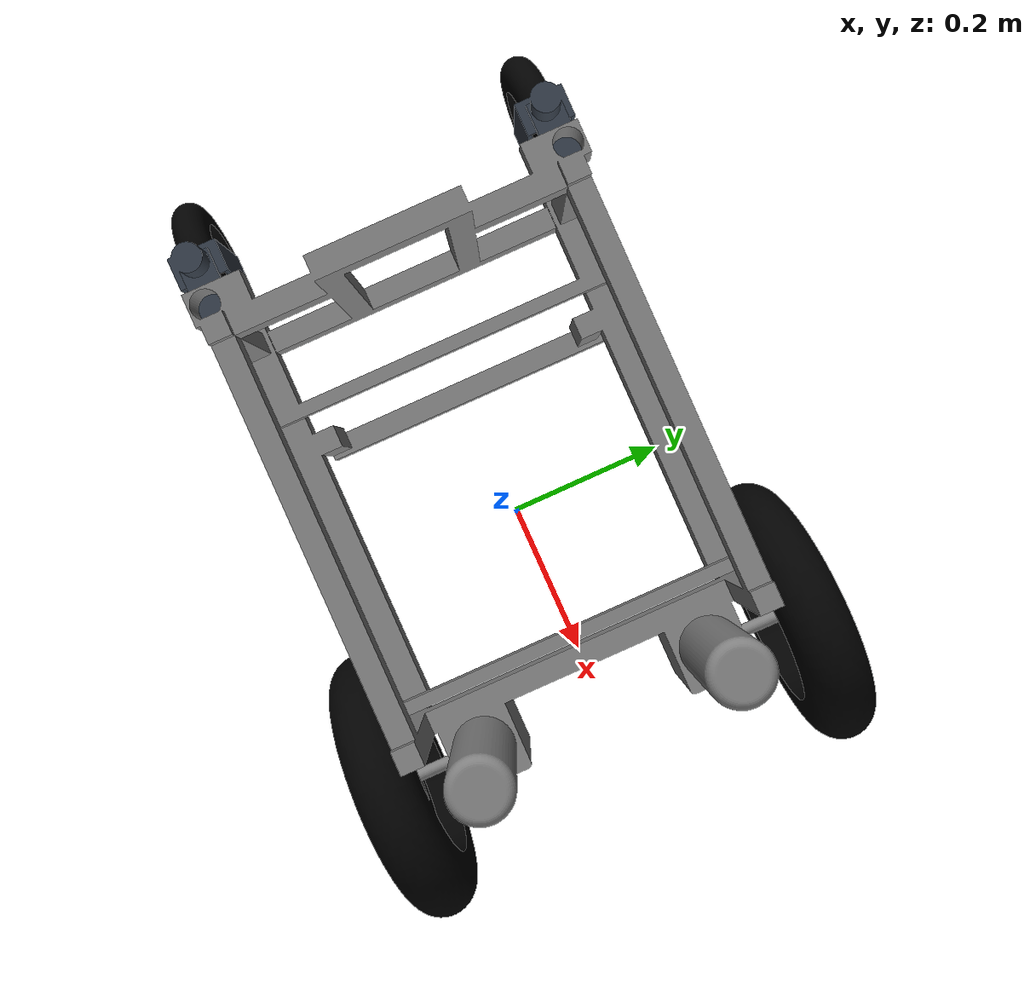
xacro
<?xml version="1.0" encoding="utf-8"?>

<robot name="robot_platform_urdf" xmlns:xacro="http://www.ros.org/wiki/xacro">

  <xacro:include filename="$(find fyp_sim)/urdf/robot.gazebo.xacro"/>

  <!-- dummy link -->
  <link name="base_footprint"/>

  <!-- chassis -->
  <link name="chassis">
    <inertial>
      <origin
        xyz="0 0 0"
        rpy="0 0 0" />
      <mass
        value="28" />
      <inertia
        ixx="0.0385919077427861"
        ixy="-1.42698858839734E-16"
        ixz="-8.43576589332318E-05"
        iyy="0.0585218852507233"
        iyz="8.03899668248163E-17"
        izz="0.0423119666555374" />
    </inertial>
    <visual>
      <origin
        xyz="0 0 0"
        rpy="0 0 0" />
      <geometry>
        <mesh
          filename="package://fyp_sim/meshes/chassis.stl" scale="0.01 0.01 0.01" />
      </geometry>
      <material
        name="chassis_material">
        <color
          rgba="0.5 0.5 0.5 1.0" />
      </material>
    </visual>
    <collision name="chassis_collision">>
      <origin
        xyz="0 0 0"
        rpy="0 0 ${-pi/2}" />
      <geometry>
        <mesh
          filename="package://fyp_sim/meshes/chassis.stl" scale="0.01 0.01 0.01" />
      </geometry>
    </collision>
  </link>

  <!-- back wheel left -->
  <link name="front_wheel_right">
    <inertial>
      <origin
        xyz="0 0 0"
        rpy="0 0 0" />
      <mass
        value="1" />
        <inertia
          ixx="1E-3"
          ixy="0"
          ixz="0"
          iyy="1E-3"
          iyz="0"
          izz="1E-3" />
    </inertial>
    <visual>
      <origin
        xyz="0 0 0"
        rpy="0 0 0" />
      <geometry>
        <mesh
          filename="package://fyp_sim/meshes/back_wheel.stl" scale="0.01 0.01 0.01"/>
      </geometry>
      <material
        name="back_wheel_left_material">
        <color
          rgba="0.0 0.0 0.0 1.0" />
      </material>
    </visual>
    <collision name="back_wheel_left_collision">
      <origin
        xyz="0 0 0"
        rpy="0 0 0" />
      <geometry>
        <mesh
          filename="package://fyp_sim/meshes/back_wheel.stl" scale="0.01 0.01 0.01"/>
      </geometry>
      <surface>
        <friction>
          <ode>
            <mu>1</mu>
            <mu2>1</mu2>
          </ode>
        </friction>
      </surface>
    </collision>
  </link>

  <!-- back wheel right -->
  <link name="front_wheel_left">
    <inertial>
      <origin
        xyz="0 0 0"
        rpy="0 0 0" />
      <mass
        value="1" />
        <inertia
          ixx="1E-3"
          ixy="0"
          ixz="0"
          iyy="1E-3"
          iyz="0"
          izz="1E-3" />
    </inertial>
    <visual>
      <origin
        xyz="0 0 0"
        rpy="0 0 0" />
      <geometry>
        <mesh
          filename="package://fyp_sim/meshes/back_wheel.stl" scale="0.01 0.01 0.01"/>
      </geometry>
      <material
        name="back_wheel_right_material">
        <color
          rgba="0.0 0.0 0.0 1.0" />
      </material>
    </visual>
    <collision name="back_wheel_right_collision">
      <origin
        xyz="0 0 0"
        rpy="0 0 0" />
      <geometry>
        <mesh
          filename="package://fyp_sim/meshes/back_wheel.stl" scale="0.01 0.01 0.01"/>
      </geometry>
      <surface>
        <friction>
          <ode>
            <mu>1</mu>
            <mu2>1</mu2>
          </ode>
        </friction>
      </surface>
    </collision>
  </link>

  <!-- front wheel left connector -->
  <link name="back_wheel_right_connector">
    <inertial>
      <origin
        xyz="0 0 0"
        rpy="0 0 0" />
      <mass
        value="0.1" />
        <inertia
          ixx="1E-3"
          ixy="0"
          ixz="0"
          iyy="1E-3"
          iyz="0"
          izz="1E-3" />
    </inertial>
    <visual>
      <origin
        xyz="0 0 0"
        rpy="0 0 0" />
      <geometry>
        <mesh
          filename="package://fyp_sim/meshes/front_wheel_connector.stl" scale="0.01 0.01 0.01"/>
      </geometry>
      <material
        name="front_wheel_left_connector_material">
        <color
          rgba="0.203125 0.238281 0.285156 1.0" />
      </material>
    </visual>
  </link>

  <!-- front wheel left connector bar -->
  <link name="back_wheel_right_bar">
    <inertial>
      <origin
        xyz="-0.03 0 0"
        rpy="0 0 0" />
      <mass
        value="0.1" />
        <inertia
          ixx="1E-3"
          ixy="0"
          ixz="0"
          iyy="1E-3"
          iyz="0"
          izz="1E-3" />
    </inertial>
    <visual>
      <origin
        xyz="-0.03 0 0"
        rpy="0 0 0" />
      <geometry>
        <box size="0.08 0.04 0.008"/>
      </geometry>
      <material
        name="front_wheel_left_bar_material">
        <color
          rgba="0.203125 0.238281 0.285156 1.0" />
      </material>
    </visual>
    <collision name="front_wheel_left_bar_collision">
      <origin
        xyz="-0.03 0 0"
        rpy="0 0 0" />
      <geometry>
        <box size="0.08 0.04 0.008"/>
      </geometry>
    </collision>
  </link>

  <!-- front wheel right connector bar -->
  <link name="back_wheel_left_bar">
    <inertial>
      <origin
        xyz="-0.03 0 0"
        rpy="0 0 0" />
      <mass
        value="0.1" />
        <inertia
          ixx="1E-3"
          ixy="0"
          ixz="0"
          iyy="1E-3"
          iyz="0"
          izz="1E-3" />
    </inertial>
    <visual>
      <origin
        xyz="-0.03 0 0"
        rpy="0 0 0" />
      <geometry>
        <box size="0.08 0.04 0.008"/>
      </geometry>
      <material
        name="front_wheel_right_bar_material">
        <color
          rgba="0.203125 0.238281 0.285156 1.0" />
      </material>
    </visual>
    <collision name="front_wheel_right_bar_collision">
      <origin
        xyz="-0.03 0 0"
        rpy="0 0 0" />
      <geometry>
        <box size="0.08 0.04 0.008"/>
      </geometry>
    </collision>
  </link>

  <!-- front wheel right connector -->
  <link name="back_wheel_left_connector">
    <inertial>
      <origin
        xyz="0 0 0"
        rpy="0 0 0" />
      <mass
        value="0.1" />
        <inertia
          ixx="1E-3"
          ixy="0"
          ixz="0"
          iyy="1E-3"
          iyz="0"
          izz="1E-3" />
    </inertial>
    <visual>
      <origin
        xyz="0 0 0"
        rpy="0 0 0" />
      <geometry>
        <mesh
          filename="package://fyp_sim/meshes/front_wheel_connector.stl" scale="0.01 0.01 0.01"/>
      </geometry>
      <material
        name="front_wheel_right_connector_material">
        <color
          rgba="0.203125 0.238281 0.285156 1.0" />
      </material>
    </visual>
  </link>

  <!-- front wheel right -->
  <link name="back_wheel_left">
    <inertial>
      <origin
        xyz="0 0 0"
        rpy="0 0 0" />
      <mass
        value="0.5" />
        <inertia
          ixx="1E-3"
          ixy="0"
          ixz="0"
          iyy="1E-3"
          iyz="0"
          izz="1E-3" />
    </inertial>
    <visual>
      <origin
        xyz="0 0 0"
        rpy="0 0 0" />
      <geometry>
        <mesh
          filename="package://fyp_sim/meshes/front_wheel.stl" scale="0.01 0.01 0.01"/>
      </geometry>
      <material
        name="front_wheel_right_material">
        <color
          rgba="0.0 0.0 0.0 1.0" />
      </material>
    </visual>
    <collision name="front_wheel_right_collision">
      <origin
        xyz="0 0 0"
        rpy="0 0 0" />
      <geometry>
        <mesh
          filename="package://fyp_sim/meshes/front_wheel.stl" scale="0.01 0.01 0.01"/>
      </geometry>
      <surface>
        <friction>
          <ode>
            <mu>1</mu>
            <mu2>1</mu2>
          </ode>
        </friction>
      </surface>
    </collision>
  </link>

  <!-- front wheel left -->
  <link name="back_wheel_right">
    <inertial>
      <origin
        xyz="0 0 0"
        rpy="0 0 0" />
      <mass
        value="0.5" />
      <inertia
        ixx="1E-3"
        ixy="0"
        ixz="0"
        iyy="1E-3"
        iyz="0"
        izz="1E-3" />
    </inertial>
    <visual>
      <origin
        xyz="0 0 0"
        rpy="0 0 0" />
      <geometry>
        <mesh
          filename="package://fyp_sim/meshes/front_wheel.stl" scale="0.01 0.01 0.01"/>
      </geometry>
      <material
        name="front_wheel_left_material">
        <color
          rgba="0.0 0.0 0.0 1.0" />
      </material>
    </visual>
    <collision name="front_wheel_left_collision">
      <origin
        xyz="0 0 0"
        rpy="0 0 0" />
      <geometry>
        <mesh
          filename="package://fyp_sim/meshes/front_wheel.stl" scale="0.01 0.01 0.01"/>
      </geometry>
      <surface>
        <friction>
          <ode>
            <mu>1</mu>
            <mu2>1</mu2>
          </ode>
        </friction>
      </surface>
    </collision>
  </link>

  <joint name="base_joint" type="fixed">
    <origin
      xyz="0 0 0.22987"
      rpy="0 0 0" />

    <parent
      link="base_footprint" />
    <child
      link="chassis" />
  </joint>

  <joint name="front_RW_joint"
    type="continuous">
    <origin
      xyz="0.23591 -0.245 -0.06987"
      rpy="${pi/2} 0 0" />
    <parent
      link="chassis" />
    <child
      link="front_wheel_right" />
    <axis
      xyz="0 0 -1" />
      <dynamics friction="0.3"/>
  </joint>

  <joint name="front_LW_joint"
    type="continuous">
    <origin
      xyz="0.23591 0.245 -0.06987"
      rpy="${-pi/2} 0 0" />
    <parent
      link="chassis" />
    <child
      link="front_wheel_left" />
    <axis
      xyz="0 0 1" />
      <dynamics friction="0.3"/>
  </joint>

  <joint name="back_wheel_right_bar_joint"
    type="continuous">
    <origin
      xyz="-0.35409 -0.22 -0.03"
      rpy="0 0 0" />
    <parent
      link="chassis" />
    <child
      link="back_wheel_right_bar" />
    <axis
      xyz="0 0 1" />
      <dynamics friction="0.2"/>
  </joint>

  <joint name="back_RW_con_joint"
    type="fixed">
    <origin
      xyz="-0.06 0 0.03513"
      rpy="0 0 ${pi/2}" />
    <parent
      link="back_wheel_right_bar" />
    <child
      link="back_wheel_right_connector" />
      <!-- front_wheel_left_bar -->
    <axis
      xyz="0 0 1" />
  </joint>

  <joint name="back_wheel_left_bar_joint"
    type="continuous">
    <origin
      xyz="-0.35409 0.22 -0.03"
      rpy="0 0 0" />
    <parent
      link="chassis" />
    <child
      link="back_wheel_left_bar" />
    <axis
      xyz="0 0 1" />
      <dynamics friction="0.2"/>
  </joint>

  <joint name="back_LW_con_joint"
    type="fixed">
    <origin
      xyz="-0.06 0 0.03513"
      rpy="0 0 ${pi/2}" />
    <parent
      link="back_wheel_left_bar" />
    <child
      link="back_wheel_left_connector" />
    <axis
      xyz="0 0 1" />
  </joint>

  <joint name="back_LW_joint"
    type="continuous">
    <origin
      xyz="0 0 -0.15"
      rpy="0 ${pi/2} 0" />
    <parent
      link="back_wheel_left_connector" />
    <child
      link="back_wheel_left" />
    <axis
      xyz="0 0 -1" />
  </joint>

  <joint name="back_RW_joint"
    type="continuous">
    <origin
      xyz="0 0 -0.15"
      rpy="0 ${-pi/2} 0" />
    <parent
      link="back_wheel_right_connector"/>
    <child
      link="back_wheel_right" />
    <axis
      xyz="0 0 1" />
  </joint>

  <transmission name="front_RW_transmission">
    <type>transmission_interface/SimpleTransmission</type>
    <joint name="front_RW_joint">
      <hardwareInterface>hardware_interface/VelocityJointInterface</hardwareInterface>
    </joint>
    <actuator name="front_RW_motor">
      <mechanicalReduction>1</mechanicalReduction>
      <hardwareInterface>VelocityJointInterface</hardwareInterface>
    </actuator>
  </transmission>

  <transmission name="front_LW_transmission">
    <type>transmission_interface/SimpleTransmission</type>
    <joint name="front_LW_joint">
      <hardwareInterface>hardware_interface/VelocityJointInterface</hardwareInterface>
    </joint>
    <actuator name="front_LW_motor">
      <mechanicalReduction>1</mechanicalReduction>
      <hardwareInterface>VelocityJointInterface</hardwareInterface>
    </actuator>
  </transmission>

  <transmission name="back_wheel_left_bar_transmission">
    <type>transmission_interface/SimpleTransmission</type>
    <joint name="back_wheel_left_bar_joint">
      <hardwareInterface>hardware_interface/EffortJointInterface</hardwareInterface>
    </joint>
    <actuator name="back_wheel_left_bar_motor">
      <mechanicalReduction>1</mechanicalReduction>
      <hardwareInterface>EffortJointInterface</hardwareInterface>
    </actuator>
  </transmission>

  <transmission name="back_wheel_right_bar_transmission">
    <type>transmission_interface/SimpleTransmission</type>
    <joint name="back_wheel_right_bar_joint">
      <hardwareInterface>hardware_interface/EffortJointInterface</hardwareInterface>
    </joint>
    <actuator name="back_wheel_right_bar_motor">
      <mechanicalReduction>1</mechanicalReduction>
      <hardwareInterface>EffortJointInterface</hardwareInterface>
    </actuator>
  </transmission>

  <!--For caster wheels; not for physical robot; only for simulation -->

  <transmission name="back_LW_transmission">
    <type>transmission_interface/SimpleTransmission</type>
    <joint name="back_LW_joint">
      <hardwareInterface>hardware_interface/EffortJointInterface</hardwareInterface>
    </joint>
    <actuator name="back_LW_motor">
      <mechanicalReduction>1</mechanicalReduction>
      <hardwareInterface>EffortJointInterface</hardwareInterface>
    </actuator>
  </transmission>

  <transmission name="back_RW_transmission">
    <type>transmission_interface/SimpleTransmission</type>
    <joint name="back_RW_joint">
      <hardwareInterface>hardware_interface/EffortJointInterface</hardwareInterface>
    </joint>
    <actuator name="back_RW_motor">
      <mechanicalReduction>1</mechanicalReduction>
      <hardwareInterface>EffortJointInterface</hardwareInterface>
    </actuator>
  </transmission>

</robot>
